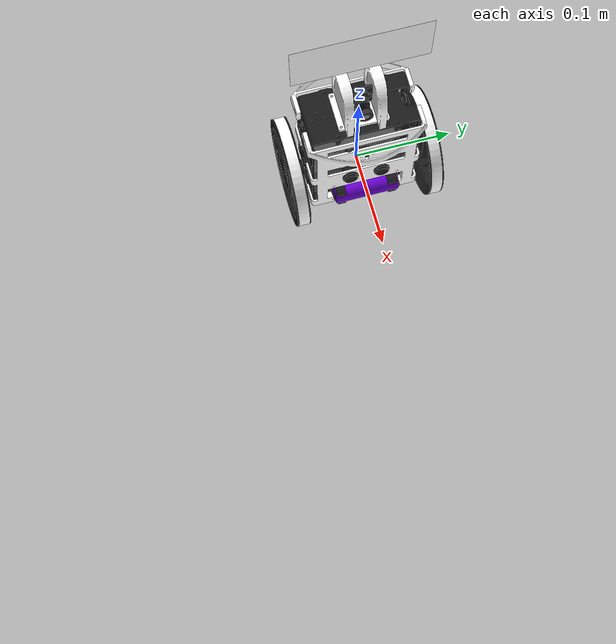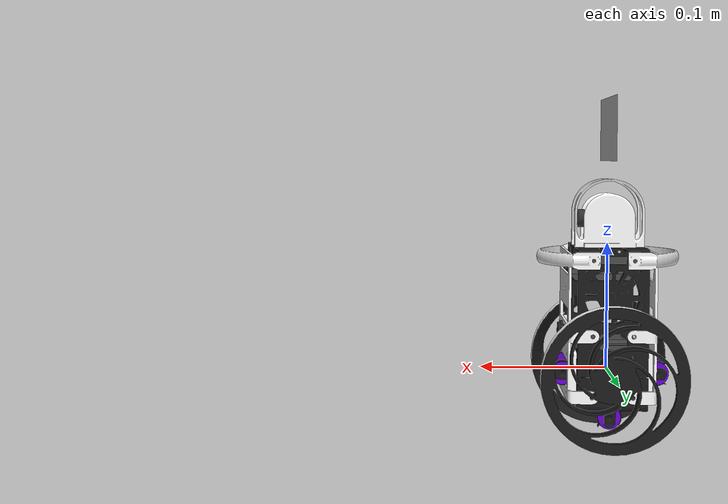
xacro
<?xml version="1.0"?>
<robot xmlns:xacro="http://www.ros.org/wiki/xacro"  name="robot">

    <!-- ARGUMENTS -->
        <!-- VISUALS -->
        <xacro:arg name="color_code" default="dark_red"/>
        <xacro:arg name="color_code_R" default="1.0"/>
        <xacro:arg name="color_code_G" default="1.0"/>
        <xacro:arg name="color_code_B" default="1.0"/>
        <xacro:arg name="color_code_A" default="1.0"/>

        <xacro:arg name="label_enabled" default="true"/>
        <xacro:arg name="label_x" default="0.13"/>
        <xacro:arg name="label_y" default="0.05"/>
            <!-- SENSORS -->
            <xacro:arg name="horizontal_sensor_visibility" default="false"/>
            <xacro:arg name="vertical_sensor_visibility" default="false"/>
            <xacro:arg name="all_sensor_visibility" default="false"/>

        <!-- CHASSIS PHYSICS -->
        <xacro:arg name="chassis_mu1" default="0.1"/> <!--SURFACE FRICTION-->
        <xacro:arg name="chassis_mu2" default="0.1"/> <!--SURFACE FRICTION-->
        <xacro:arg name="chassis_kp" default="0.7"/>  <!--STIFFNESS-->
        <xacro:arg name="chassis_kd" default="0.05"/> <!--DAMPING-->

            <!-- CHASSIS INERTIA -->
            <xacro:arg name="chassis_mx" default="0.000001"/>
            <xacro:arg name="chassis_my" default="0.000109"/>
            <xacro:arg name="chassis_mz" default="0.011152"/>

            <xacro:arg name="chassis_ixx" default="0.00149038"/>
            <xacro:arg name="chassis_ixy" default="-0.00000016"/>
            <xacro:arg name="chassis_ixz" default="0.00000155"/>
            <xacro:arg name="chassis_iyy" default="0.00084463"/>
            <xacro:arg name="chassis_iyz" default="-0.00000170"/>
            <xacro:arg name="chassis_izz" default="0.00108896"/>

        <!-- WHEELS PHYSICS -->
        <xacro:arg name="wheel_mu1" default="10"/>    <!--SURFACE FRICTION-->
        <xacro:arg name="wheel_mu2" default="10"/>    <!--SURFACE FRICTION-->
        <xacro:arg name="wheel_kp" default="0.7"/>      <!--STIFFNESS-->
        <xacro:arg name="wheel_kd" default="0.05"/>      <!--DAMPING-->

        <xacro:arg name="wheel_joint_dumping" default="0.01"/> <!--JOINT DAMPING-->
        <xacro:arg name="wheel_joint_friction" default="0.1"/> <!--JOINT FRICTION-->

            <!-- CHASSIS INERTIA -->
            <xacro:arg name="wheels_ixx" default="0.00006281"/>
            <xacro:arg name="wheels_ixy" default="0.0"/>
            <xacro:arg name="wheels_ixz" default="0.0"/>
            <xacro:arg name="wheels_iyy" default="0.00006281"/>
            <xacro:arg name="wheels_iyz" default="0.0"/>
            <xacro:arg name="wheels_izz" default="0.00011530"/>

            <!-- ROS -->
        <xacro:arg name="robot_namespace" default="robot"/>
        <xacro:arg name="package_path" default=""/>

        <!-- SENSORS -->
        <xacro:arg name="horizontal_sensor_visibility" default="false"/>
        <xacro:arg name="vertical_sensor_visibility" default="false"/>
        <xacro:arg name="all_sensor_visibility" default="false"/>
        <xacro:arg name="camera_visibility" default="false"/>

        <xacro:arg name="camera_enabled" default="True"/>
        <xacro:arg name="TOF_FOV_angle" default="0.001"/> <!--FOV - Field of View-->
        <xacro:arg name="TOF_range" default="2"/>
        <xacro:arg name="TOF_enabled" default="false"/>

    <!-- INCLUDE -->
        <!-- CONFIG -->
            <xacro:include filename="materials.xacro"/>
            <xacro:include filename="variables.xacro"/>

        <!-- MACRO -->
            <xacro:include filename="macros.xacro"/>

        <!-- ROBOT -->
            <xacro:include filename="diff_control.xacro"/>

            <xacro:include filename="chassis.xacro"/>
            <xacro:include filename="wheels.xacro"/>

            <xacro:include filename="imu.xacro"/>

            <xacro:if value="$(arg label_enabled)">
                <xacro:include filename="label.xacro"/>
            </xacro:if>

            <xacro:if value="$(arg TOF_enabled)">
                <xacro:include filename="tof_sensors.xacro"/>
            </xacro:if>

            <xacro:if value="$(arg camera_enabled)">
                <xacro:include filename="camera.xacro"/>
            </xacro:if>

</robot>

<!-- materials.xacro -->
<robot xmlns:xacro="http://www.ros.org/wiki/xacro">

    <material name="custom_color">
        <color rgba="$(arg color_code_R) $(arg color_code_G) $(arg color_code_B) $(arg color_code_A)"/>
    </material>

    <material name="dark_red">
        <color rgba="0.700000 0.000000 0.000000 1.000000"/>
    </material>

    <material name="purple">
        <color rgba="0.400000 0.000000 0.800000 1.000000"/>
    </material>

    <material name="dark_gray">
        <color rgba="0.200000 0.200000 0.200000 1.000000"/>
    </material>

    <material name="gray">
        <color rgba="0.300000 0.300000 0.300000 1.000000"/>
    </material>

    <material name="black">
        <color rgba="0.100000 0.100000 0.100000 1.000000"/>
    </material>

    <material name="white">
        <color rgba="0.900000 0.900000 0.900000 1.000000"/>
    </material>

    <material name="lens">
        <color rgba="0.750000 0.750000 0.800000 0.500000"/>
    </material>

</robot>

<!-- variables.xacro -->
<robot xmlns:xacro="http://www.ros.org/wiki/xacro">

    <xacro:property name="color_code_material" value="custom_color"/>

    <xacro:property name="batteries_material" value="purple"/>

    <!-- MATERIALS -->
        <!-- WHEEL -->
        <xacro:property name="tire_material" value="${color_code_material}"/>
        <xacro:property name="wheel_material" value="black"/>

    <!-- SENSORS -->
        <!-- TOF -->
            <xacro:property name="tof_material" value="dark_red"/>

        <!-- CAMERA -->
            <xacro:property name="camera_base_material" value="dark_gray"/>
            <xacro:property name="camera_PCB_material" value="black"/>
            <xacro:property name="camera_bumper_material" value="${color_code_material}"/>
            <xacro:property name="camera_lens_material" value="lens"/>

    <!-- CHASSIS -->
        <xacro:property name="skeleton_material" value="black"/>
        <xacro:property name="fronts_material" value="${color_code_material}"/>
        <xacro:property name="internal_components_material" value="gray"/>

    <!-- VARIABLES -->
        <!-- ROBOT STRUCTURE -->
            <xacro:property name="wheel_separation" value="0.0625"/>
            <xacro:property name="wheel_radius" value="0.056"/>
            <xacro:property name="wheel_width" value="0.0145"/>

            <xacro:if value="$(arg camera_enabled)">
                <xacro:property name="label_hight" value="0.19"/>
            </xacro:if>
            <xacro:unless value="$(arg camera_enabled)">
                <xacro:property name="label_hight" value="0.16"/>
            </xacro:unless>

        <!-- SENSORS -->
            <xacro:if value="$(arg horizontal_sensor_visibility)">
                <xacro:property name="up_down_sensor_visibility" value="true"/>
                <xacro:property name="right_left_sensor_visibility" value="true"/>
                <xacro:property name="front_back_sensor_visibility" value="false"/>
            </xacro:if>
            <xacro:if value="$(arg vertical_sensor_visibility)">
                <xacro:property name="up_down_sensor_visibility" value="false"/>
                <xacro:property name="right_left_sensor_visibility" value="true"/>
                <xacro:property name="front_back_sensor_visibility" value="true"/>
            </xacro:if>
            <xacro:if value="$(arg all_sensor_visibility)">
                <xacro:property name="up_down_sensor_visibility" value="true"/>
                <xacro:property name="right_left_sensor_visibility" value="true"/>
                <xacro:property name="front_back_sensor_visibility" value="true"/>
            </xacro:if>
            <xacro:unless value="$(arg all_sensor_visibility)">
                <xacro:property name="up_down_sensor_visibility" value="false"/>
                <xacro:property name="right_left_sensor_visibility" value="false"/>
                <xacro:property name="front_back_sensor_visibility" value="false"/>
            </xacro:unless>

    <!-- FILE PATHS -->
        <!-- GAZEBOMATERIALS -->
        <xacro:property name="rys_materials_path"
        value="file://$(arg package_path)/description/materials/scripts/colors.material"/>

        <xacro:property name="rys_textures_path"
        value="file://$(arg package_path)/description/materials/scripts/textures.material"/>

        <!-- ROBOT STRUCTURE -->
            <!-- CHASSIS -->
                <xacro:property name="skeleton_mesh_path"
                value="file://$(find minirys_sim)/description/meshes/chassis/skeleton_with_switches.STL"/>
                <xacro:property name="fronts_mesh_path"
                value="file://$(find minirys_sim)/description/meshes/chassis/visual_chassis.STL"/>
                <xacro:property name="internal_components_mesh_path"
                value="file://$(find minirys_sim)/description/meshes/chassis/PCB_and_stepper.STL"/>
                <xacro:property name="batteries_mesh_path"
                value="file://$(find minirys_sim)/description/meshes/chassis/battery.STL"/>

            <!-- WHEELS -->
                <xacro:property name="left_wheel_mesh_path"
                value="file://$(find minirys_sim)/description/meshes/wheels/left_rim.STL"/>
                <xacro:property name="left_tire_mesh_path"
                value="file://$(find minirys_sim)/description/meshes/wheels/left_tire.STL"/>

                <xacro:property name="right_wheel_mesh_path"
                value="file://$(find minirys_sim)/description/meshes/wheels/right_rim.STL"/>
                <xacro:property name="right_tire_mesh_path"
                value="file://$(find minirys_sim)/description/meshes/wheels/right_tire.STL"/>

        <!-- CAMERA -->
            <xacro:property name="camera_bumper_mesh_path"
            value="file://$(find minirys_sim)/description/meshes/sensors/bumper.STL"/>
            <xacro:property name="camera_base_mesh_path"
            value="file://$(find minirys_sim)/description/meshes/sensors/camera_base.STL"/>
            <xacro:property name="camera_lens_mesh_path"
            value="file://$(find minirys_sim)/description/meshes/sensors/camera_lens.STL"/>
            <xacro:property name="camera_PCB_mesh_path"
            value="file://$(find minirys_sim)/description/meshes/sensors/camera_PCB.STL"/>

</robot>

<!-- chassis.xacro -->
<robot xmlns:xacro="http://www.ros.org/wiki/xacro">

    <!-- BASE LINK -->
        <link name="base_link"></link>

    <!-- SKELETON LINK -->
        <joint name="chassis_joint" type="fixed">
            <parent link="base_link"/>
            <child link="chassis"/>
            <origin xyz="0 0 0"/>
        </joint>

        <link name="chassis">
            <visual>
            <origin xyz="0 0 0" rpy="0 0 0"/>
                <geometry>
                    <mesh filename="${skeleton_mesh_path}" scale="1 1 1"/>
                </geometry>
                <material name="${skeleton_material}"/>
            </visual>

            <!-- COLISION -->
            <collision name='chassis_box'>
                <origin xyz="0 0 0.03515" rpy="0 0 0"/>
                <geometry>
                    <box size="0.07 0.116 0.12"/>
                </geometry>
                <surface>
                    <friction>
                        <bounce>
                            <restitution_coefficient>0</restitution_coefficient>
                            <threshold>1e+06</threshold>
                        </bounce>
                      <ode>
                        <mu>$(arg chassis_mu1)</mu>
                        <mu2>$(arg chassis_mu2)</mu2>
                        <kp>$(arg chassis_kp)</kp>
                        <kd>$(arg chassis_kd)</kd>
                        <slip1>1.0</slip1>
                        <slip2>1.0</slip2>
                      </ode>
                    </friction>
                  </surface>
            </collision>

            <collision name='side_bumper'>
                <origin xyz="0 0 0.09" rpy="0 0 0"/>
                <geometry>
                    <cylinder radius="0.056" length="0.01"/>
                </geometry>
                <surface>
                    <friction>
                        <bounce>
                            <restitution_coefficient>0</restitution_coefficient>
                            <threshold>1e+06</threshold>
                        </bounce>
                      <ode>
                        <mu>$(arg chassis_mu1)</mu>
                        <mu2>$(arg chassis_mu2)</mu2>
                        <kp>$(arg chassis_kp)</kp>
                        <kd>$(arg chassis_kd)</kd>
                        <slip1>1.0</slip1>
                        <slip2>1.0</slip2>
                      </ode>
                    </friction>
                  </surface>
            </collision>

            <collision name='front_battery'>
                <origin xyz="0.036 0 0" rpy="${pi/2} 0 0"/>
                <geometry>
                    <cylinder radius="0.01" length="0.071"/>
                </geometry>
            </collision>

            <collision name='back_battery'>
                <origin xyz="-0.038 0 0" rpy="${pi/2} 0 0"/>
                <geometry>
                    <cylinder radius="0.01" length="0.071"/>
                </geometry>
            </collision>

            <collision name='lower_battery'>
                <origin xyz="0 0 -0.034" rpy="${pi/2} 0 0"/>
                <geometry>
                    <cylinder radius="0.01" length="0.071"/>
                </geometry>
            </collision>

            <inertial>
                <origin xyz="$(arg chassis_mx) $(arg chassis_my) $(arg chassis_mz)" rpy="0 0 0"/>
                <mass value="1.75203002"/>
                <inertia ixx="$(arg chassis_ixx)"
                         ixy="$(arg chassis_ixy)"
                         ixz="$(arg chassis_ixz)"
                         iyy="$(arg chassis_iyy)"
                         iyz="$(arg chassis_iyz)"
                         izz="$(arg chassis_izz)"/>
            </inertial>
        </link>

        <gazebo reference="chassis">
            <visual>
                <material>
                        <ambient>0.10 0.10 0.10</ambient>
                        <diffuse>0.10 0.10 0.10</diffuse>
                        <specular>0.40 0.40 0.40 1.00 5.00</specular>
                        <emissive>0 0 0 1</emissive>
                </material>
            </visual>
            <mu1>$(arg chassis_mu1)</mu1>
            <mu2>$(arg chassis_mu2)</mu2>
            <kp>$(arg chassis_kp)</kp>
            <kd>$(arg chassis_kd)</kd>
            <slip1>1.0</slip1>
            <slip2>1.0</slip2>
            <fdir1 value="0 0 1"/>
            <selfCollide>false</selfCollide>
        </gazebo>

    <!-- VISUAL LINKS -->
        <!-- FRONTS -->
        <joint name="fronts_joint" type="fixed">
            <parent link="chassis"/>
            <child link="fronts"/>
            <origin xyz="0 0 0"/>
        </joint>

        <link name="fronts">
            <visual>
            <origin xyz="0 0 0" rpy="0 0 0"/>
                <geometry>
                    <mesh filename="${fronts_mesh_path}" scale="1 1 1"/>
                </geometry>
                <material name="${fronts_material}"/>
            </visual>
        </link>

        <gazebo reference="fronts">
            <visual>
                <material>
                    <ambient>$(arg color_code_R) $(arg color_code_G) $(arg color_code_B) $(arg color_code_A)</ambient>
                    <diffuse>$(arg color_code_R) $(arg color_code_G) $(arg color_code_B) $(arg color_code_A)</diffuse>
                    <specular>$(arg color_code_R) $(arg color_code_G) $(arg color_code_B) $(arg color_code_A)</specular>
                    <emissive>0 0 0 1</emissive>
                </material>
            </visual>
        </gazebo>

        <!-- INTERNAL COMPONENTS -->
        <joint name="internal_components_joint" type="fixed">
            <parent link="chassis"/>
            <child link="internal_components"/>
            <origin xyz="0 0 0"/>
        </joint>

        <link name="internal_components">
            <visual>
            <origin xyz="0 0 0" rpy="0 0 0"/>
                <geometry>
                    <mesh filename="${internal_components_mesh_path}" scale="1 1 1"/>
                </geometry>
                <material name="${internal_components_material}"/>
            </visual>
        </link>

        <gazebo reference="internal_components">
            <visual>
                <material>
                    <ambient>0.50 0.50 0.50</ambient>
                    <diffuse>0.75 0.75 0.75</diffuse>
                    <specular>0.90 0.90 0.90 50.00 50.00</specular>
                    <emissive>0 0 0 1</emissive>
                </material>
            </visual>
        </gazebo>

        <!-- BATTERIES -->
        <joint name="batteries_joint" type="fixed">
            <parent link="chassis"/>
            <child link="batteries"/>
            <origin xyz="0 0 0"/>
        </joint>

        <link name="batteries">
            <visual>
            <origin xyz="0 0 0" rpy="0 0 0"/>
                <geometry>
                    <mesh filename="${batteries_mesh_path}" scale="1 1 1"/>
                </geometry>
                <material name="${batteries_material}"/>
            </visual>
        </link>

        <gazebo reference="batteries">
            <visual>
                <material>
                    <ambient>0.40 0.00 0.80</ambient>
                    <diffuse>0.00 0.00 0.50</diffuse>
                    <specular>0.40 0.40 0.40 1.00 5.00</specular>
                    <emissive>0 0 0 1</emissive>
                </material>
            </visual>
        </gazebo>

</robot>

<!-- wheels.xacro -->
<robot xmlns:xacro="http://www.ros.org/wiki/xacro">

<!-- fdir1 stets direction of the mu1 in reference to the collision frame. We are rotating around z axis so the movement is along y axis -->

    <!-- LEFT WHEEL LINK -->
    <joint name="left_wheel_joint" type="continuous">
        <parent link="chassis"/>
        <child link="left_wheel"/>
        <origin xyz="0 ${wheel_separation} 0" rpy="-${pi/2} 0 0"/>
        <axis xyz="0 0 1"/>
    </joint>

    <link name="left_wheel">
        <visual>
          <origin xyz="0 0 0" rpy="0 0 0"/>
            <geometry>
              <mesh filename="${left_wheel_mesh_path}" scale="1 1 1"/>
            </geometry>
            <material name="${wheel_material}"/>
        </visual>

        <collision name='left_wheel_collision'>
          <origin xyz="0 0 0.007" rpy="0 0 0"/>
          <geometry>
            <cylinder radius="${wheel_radius}" length="${wheel_width}"/>
          </geometry>
          <surface>
            <friction>
              <ode>
                <mu>(arg wheel_mu1)</mu>
                <mu2>(arg wheel_mu2)</mu2>
                <slip1>1.0</slip1>
                <slip2>1.0</slip2>
              </ode>
            </friction>
          </surface>
        </collision>

        <inertial>
          <origin xyz="0 0 0" rpy="0 0 0"/>
          <mass value="0.32705622"/>
          <inertia ixx="$(arg wheels_ixx)"
                   ixy="$(arg wheels_ixy)"
                   ixz="$(arg wheels_ixz)"
                   iyy="$(arg wheels_iyy)"
                   iyz="$(arg wheels_iyz)"
                   izz="$(arg wheels_izz)"/>
        </inertial>
    </link>

    <gazebo reference="left_wheel">
      <visual>inertia
          <material>
            <ambient>0.10 0.10 0.10</ambient>
            <diffuse>0.10 0.10 0.10</diffuse>
            <specular>0.40 0.40 0.40 1.00 5.00</specular>
            <emissive>0 0 0 1</emissive>
          </material>
      </visual>

      <mu1>$(arg wheel_mu1)</mu1>
      <mu2>$(arg wheel_mu2)</mu2>
      <kp>$(arg wheel_kp)</kp>
      <kd>$(arg wheel_kd)</kd>
      <slip1>1.0</slip1>
      <slip2>1.0</slip2>
      <fdir1 value="0 1 0"/>
    </gazebo>

    <!-- LEFT TIRE LINK -->

    <joint name="left_tire_joint" type="fixed">
        <parent link="left_wheel"/>
        <child link="left_tire"/>
        <origin xyz="0 0 0" rpy="0 0 0"/>
    </joint>

    <link name="left_tire">
        <visual>
          <origin xyz="0 0 0" rpy="0 0 0"/>
            <geometry>
              <mesh filename="${left_tire_mesh_path}" scale="1 1 1"/>
            </geometry>
            <material name="${tire_material}"/>
        </visual>
    </link>

    <gazebo reference="left_tire">
      <visual>
          <material>
              <ambient>$(arg color_code_R) $(arg color_code_G) $(arg color_code_B) $(arg color_code_A)</ambient>
              <diffuse>$(arg color_code_R) $(arg color_code_G) $(arg color_code_B) $(arg color_code_A)</diffuse>
              <specular>$(arg color_code_R) $(arg color_code_G) $(arg color_code_B) $(arg color_code_A)</specular>
              <emissive>0 0 0 1</emissive>
          </material>
      </visual>
    </gazebo>

    <!-- RIGHT WHEEL LINK -->

    <joint name="right_wheel_joint" type="continuous">
      <parent link="chassis"/>
      <child link="right_wheel"/>
      <origin xyz="0 -${wheel_separation} 0" rpy="${pi/2} 0 0"/>
      <axis xyz="0 0 -1"/>
    </joint>

    <link name="right_wheel">
      <visual>
        <origin xyz="0 0 0" rpy="0 0 0"/>
          <geometry>
            <mesh filename="${right_wheel_mesh_path}" scale="1 1 1"/>
          </geometry>
          <material name="${wheel_material}"/>
      </visual>

      <collision name='right_wheel_collision'>
        <origin xyz="0 0 0.007" rpy="0 0 0"/>
        <geometry>
          <cylinder radius="${wheel_radius}" length="${wheel_width}"/>
        </geometry>
        <surface>
          <friction>
            <ode>
              <mu>(arg wheel_mu1)</mu>
              <mu2>(arg wheel_mu2)</mu2>
              <slip1>1.0</slip1>
              <slip2>1.0</slip2>
            </ode>
          </friction>
        </surface>
      </collision>

      <inertial>
        <origin xyz="0 0 0" rpy="0 0 0"/>
        <mass value="0.32705622"/>
        <inertia ixx="$(arg wheels_ixx)"
                 ixy="$(arg wheels_ixy)"
                 ixz="$(arg wheels_ixz)"
                 iyy="$(arg wheels_iyy)"
                 iyz="$(arg wheels_iyz)"
                 izz="$(arg wheels_izz)"/>
      </inertial>

    </link>

    <gazebo reference="right_wheel">
      <visual>
          <material>
            <ambient>0.10 0.10 0.10</ambient>
            <diffuse>0.10 0.10 0.10</diffuse>
            <specular>0.40 0.40 0.40 1.00 5.00</specular>
            <emissive>0 0 0 1</emissive>
          </material>
      </visual>
      <mu1>$(arg wheel_mu1)</mu1>
      <mu2>$(arg wheel_mu2)</mu2>
      <kp>$(arg wheel_kp)</kp>
      <kd>$(arg wheel_kd)</kd>
      <slip1>1.0</slip1>
      <slip2>1.0</slip2>
      <fdir1 value="0 1 0"/>
    </gazebo>

    <!-- RIGHT TIRE LINK -->

    <joint name="right_tire_joint" type="fixed">
        <parent link="right_wheel"/>
        <child link="right_tire"/>
        <origin xyz="0 0 0" rpy="0 0 0"/>
    </joint>

    <link name="right_tire">
        <visual>
          <origin xyz="0 0 0" rpy="0 0 0"/>
            <geometry>
              <mesh filename="${right_tire_mesh_path}" scale="1 1 1"/>
            </geometry>
            <material name="${tire_material}"/>
        </visual>
    </link>

    <gazebo reference="right_tire">
      <visual>
          <material>
              <ambient>$(arg color_code_R) $(arg color_code_G) $(arg color_code_B) $(arg color_code_A)</ambient>
              <diffuse>$(arg color_code_R) $(arg color_code_G) $(arg color_code_B) $(arg color_code_A)</diffuse>
              <specular>$(arg color_code_R) $(arg color_code_G) $(arg color_code_B) $(arg color_code_A)</specular>
              <emissive>0 0 0 1</emissive>
          </material>
      </visual>
    </gazebo>
</robot>

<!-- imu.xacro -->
<robot xmlns:xacro="http://www.ros.org/wiki/xacro">
    <joint name="imu_joint" type="fixed">
        <parent link="chassis"/>
        <child link="imu_link"/>
        <origin xyz="$(arg chassis_mx) $(arg chassis_my) $(arg chassis_mz)" rpy="0 0 0"/>
    </joint>

    <link name="imu_link"></link>

    <gazebo reference="imu_link">
        <gravity>true</gravity>
        <sensor name='imu_sensor' type='imu'>
            <always_on>1</always_on>
            <update_rate>1000</update_rate>
            <visualize>1</visualize>
            <topic>__default_topic__</topic>
            <plugin name='imu_sensor' filename='libgazebo_ros_imu_sensor.so'>
                <ros>
                    <namespace>/$(arg robot_namespace)</namespace>
                    <remapping>~/out:=imu_vr</remapping>
                </ros>
                <topicName>imu_data</topicName>
                <bodyName>imu_link</bodyName>
                <updateRateHZ>10.0</updateRateHZ>
                <gaussianNoise>0.0</gaussianNoise>
                <xyzOffset>0 0 0</xyzOffset>
                <rpyOffset>0 0 0</rpyOffset>
            </plugin>
            <pose>0 0 0 0 0 0</pose>
        </sensor>
    </gazebo>
</robot>

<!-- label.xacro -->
<robot xmlns:xacro="http://www.ros.org/wiki/xacro">

    <!-- LABEL -->
    <joint name="label_joint" type="fixed">
        <parent link="chassis"/>
        <child link="label"/>
        <origin xyz="0.0 0.0 ${label_hight}" rpy="0 0 0"/>
    </joint>

    <link name="label">
        <visual>
            <origin xyz="0 0 0" rpy="0 0 0"/>
            <geometry>
                    <box size="0.0001 $(arg label_x) $(arg label_y)"/>
            </geometry>
            <material name="white"/>
        </visual>
    </link>

    <gazebo reference="label">
        <visual>
            <material>
                <script>
                    <uri>${rys_textures_path}</uri>
                    <name>rys/$(arg robot_namespace)</name>
                </script>
            </material>
        </visual>
    </gazebo>

</robot>

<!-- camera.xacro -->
<robot xmlns:xacro="http://www.ros.org/wiki/xacro">

    <!-- BUMPER LINK -->

    <joint name="bumper_joint" type="fixed">
        <parent link="chassis"/>
        <child link="bumper"/>
        <origin xyz="0 0 0.0978" rpy="0 0 0"/>
    </joint>

    <link name="bumper">
        <visual>
          <origin xyz="0 0 0" rpy="0 0 0"/>
            <geometry>
                <mesh filename="${camera_bumper_mesh_path}" scale="1 1 1"/>
            </geometry>
            <material name="${camera_bumper_material}"/>
        </visual>

        <collision name='upper_bumper'>
            <origin xyz="0 0 0.0267" rpy="${pi/2} 0 0"/>
            <geometry>
                <cylinder radius="0.027" length="0.06"/>
            </geometry>
        </collision>

    </link>

    <gazebo reference="bumper">
        <visual>
            <material>
              <ambient>$(arg color_code_R) $(arg color_code_G) $(arg color_code_B) $(arg color_code_A)</ambient>
              <diffuse>$(arg color_code_R) $(arg color_code_G) $(arg color_code_B) $(arg color_code_A)</diffuse>
              <specular>$(arg color_code_R) $(arg color_code_G) $(arg color_code_B) $(arg color_code_A)</specular>
              <emissive>0 0 0 1</emissive>
            </material>
        </visual>
    </gazebo>

    <!-- CAMERA BASE LINK -->

    <joint name="camera_base_joint" type="fixed">
        <parent link="bumper"/>
        <child link="camera_base"/>
        <origin xyz="0.022 0 0.022" rpy="0 0 0"/>
    </joint>

    <link name="camera_base">
        <visual>
          <origin xyz="-0.022 0 -0.022" rpy="0 0 0"/>
            <geometry>
                <mesh filename="${camera_base_mesh_path}" scale="1 1 1"/>
            </geometry>
            <material name="${camera_base_material}"/>
        </visual>
    </link>

    <gazebo reference="camera_base">
        <visual>
            <material>
                <ambient>0.20 0.20 0.20</ambient>
                <diffuse>0.20 0.20 0.20</diffuse>
                <specular>0.40 0.40 0.40 1.00 5.00</specular>
                <emissive>0 0 0 1</emissive>
            </material>
        </visual>
    </gazebo>

    <!-- CAMERA OPTICAL LINK -->

    <joint name="camera_optical_joint" type="fixed">
        <parent link="bumper"/>
        <child link="camera_optical_link"/>
        <origin xyz="0.022 0 0.022" rpy="-${pi/2} 0 -${pi/2}"/>
    </joint>

    <link name="camera_optical_link"></link>

    <gazebo reference="camera_base">
        <sensor name="camera" type="camera">
            <pose> 0 0 0 0 0 0 </pose>
            <visualize>$(arg camera_visibility)</visualize>
            <update_rate>10</update_rate>
            <camera>
                <horizontal_fov>1.089</horizontal_fov>
                <image>
                    <format>R8G8B8</format>
                    <width>640</width>
                    <height>480</height>
                </image>
                <clip>
                    <near>0.05</near>
                    <far>12.0</far>
                </clip>
            </camera>
            <plugin name="camera_controller" filename="libgazebo_ros_camera.so">
                <frame_name>camera_optical_link</frame_name>
                <ros>
                    <namespace>/$(arg robot_namespace)</namespace>
                </ros>
            </plugin>
        </sensor>
    </gazebo>

    <!-- PCB LINK -->

    <joint name="camera_PCB_joint" type="fixed">
        <parent link="bumper"/>
        <child link="camera_PCB"/>
        <origin xyz="0 0 0" rpy="0 0 0"/>
    </joint>

    <link name="camera_PCB">
        <visual>
          <origin xyz="0 0 0" rpy="0 0 0"/>
            <geometry>
                <mesh filename="${camera_PCB_mesh_path}" scale="1 1 1"/>
            </geometry>
            <material name="${camera_PCB_material}"/>
        </visual>
    </link>

    <gazebo reference="camera_PCB">
        <visual>
            <material>
                <ambient>0.10 0.10 0.10</ambient>
                <diffuse>0.10 0.10 0.10</diffuse>
                <specular>0.40 0.40 0.40 1.00 5.00</specular>
                <emissive>0 0 0 1</emissive>
            </material>
        </visual>
    </gazebo>

    <!-- LENS LINK -->

    <joint name="lens_joint" type="fixed">
        <parent link="bumper"/>
        <child link="lens"/>
        <origin xyz="0 0 0" rpy="0 0 0"/>
    </joint>

    <link name="lens">
        <visual>
          <origin xyz="0 0 0" rpy="0 0 0"/>
            <geometry>
                <mesh filename="${camera_lens_mesh_path}" scale="1 1 1"/>
            </geometry>
            <material name="${camera_lens_material}"/>
        </visual>
    </link>

    <gazebo reference="lens">
        <visual>
            <material>
                <ambient>0.75 0.75 0.8</ambient>
                <diffuse>0.75 0.75 0.8</diffuse>
                <specular>0.75 0.75 0.8 0.3 5</specular>
                <emissive>0 0 0 1</emissive>
            </material>
        </visual>
    </gazebo>

</robot>
